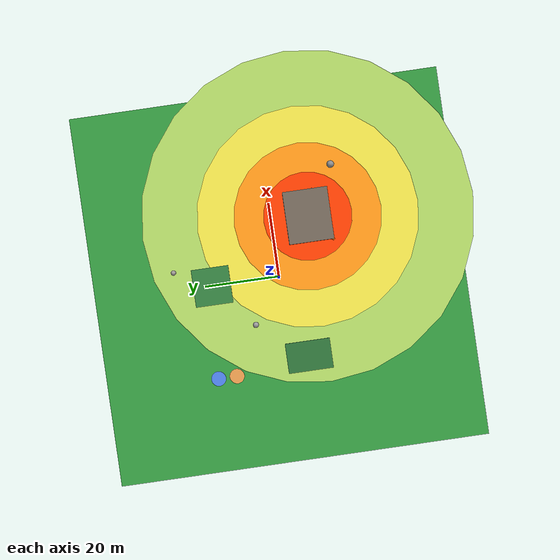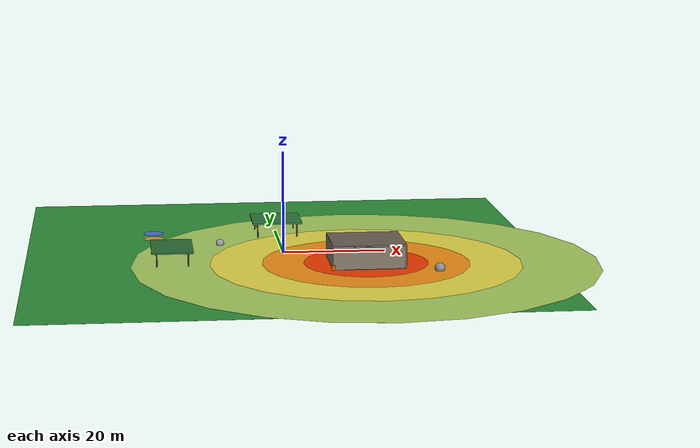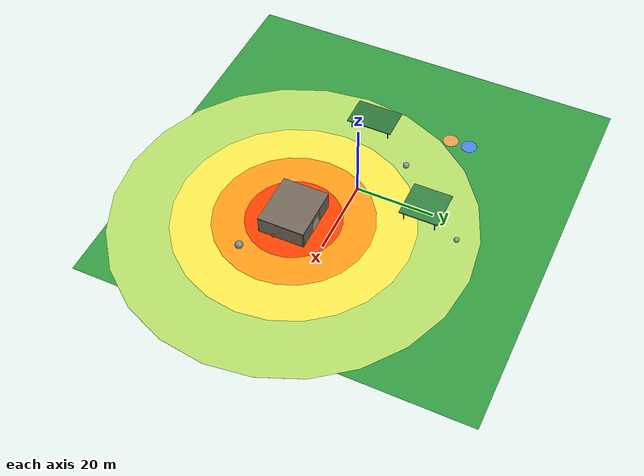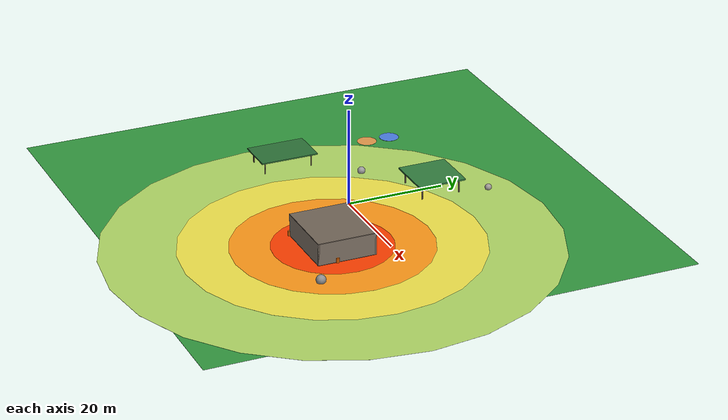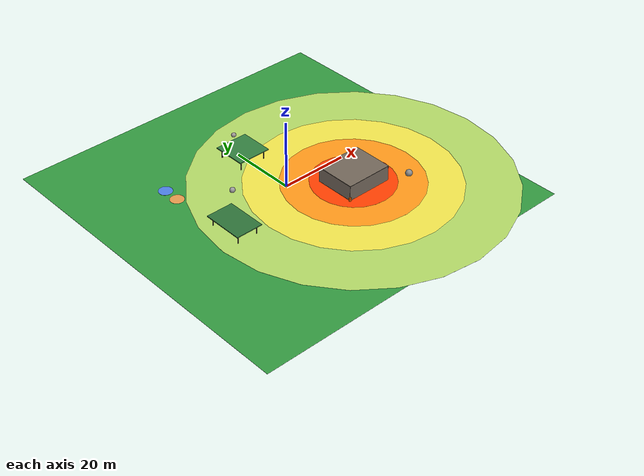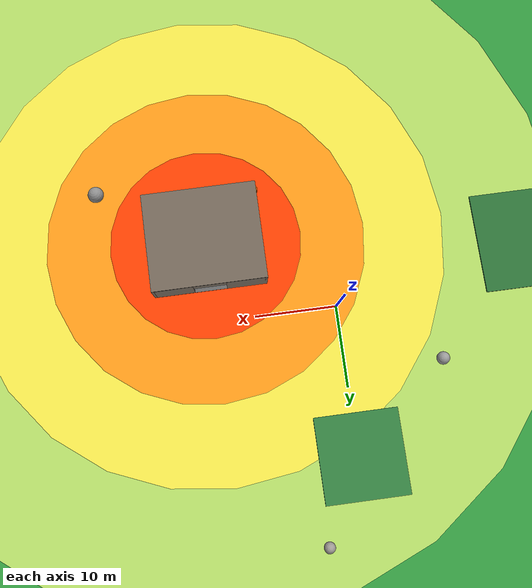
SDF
<?xml version="1.0" ?>
<sdf version="1.9">
  <world name="contamination_world">

    <!-- CONTAMINATION SOURCE LOCALIZATION SCENARIO  -->
    <!-- Source Location: (15, -10) inside warehouse -->
    <!-- Drone spawn: (-25, 20, 2.5)                  -->
    <!-- Rover spawn: (-25, 15, 0.5)                  -->

    <!-- Physics Configuration -->
    <physics name="1ms" type="dart">
      <max_step_size>0.004</max_step_size>
      <real_time_factor>1.0</real_time_factor>
      <real_time_update_rate>250</real_time_update_rate>
    </physics>

    <!-- Required for PX4 sensors -->
    <gravity>0 0 -9.8</gravity>
    <magnetic_field>6e-06 2.3e-05 -4.2e-05</magnetic_field>
    <atmosphere type="adiabatic"/>

    <!-- GPS coordinates (Zurich area - PX4 default) -->
    <spherical_coordinates>
      <surface_model>EARTH_WGS84</surface_model>
      <world_frame_orientation>ENU</world_frame_orientation>
      <latitude_deg>47.397971057728974</latitude_deg>
      <longitude_deg>8.546163739800146</longitude_deg>
      <elevation>0</elevation>
    </spherical_coordinates>

    <!-- Lighting -->
    <light type="directional" name="sun">
      <cast_shadows>true</cast_shadows>
      <pose>0 0 50 0 0 0</pose>
      <diffuse>0.9 0.9 0.85 1</diffuse>
      <specular>0.3 0.3 0.3 1</specular>
      <direction>-0.5 0.2 -0.9</direction>
    </light>

    <light type="directional" name="fill">
      <cast_shadows>false</cast_shadows>
      <pose>0 0 30 0 0 0</pose>
      <diffuse>0.3 0.3 0.4 1</diffuse>
      <direction>0.5 -0.2 -0.7</direction>
    </light>

    <!-- GROUND ZONES - CONTAMINATION GRADIENT       -->

    <!-- Base Ground (Clean - Green) -->
    <model name="ground_clean">
      <static>true</static>
      <pose>0 0 -0.01 0 0 0</pose>
      <link name="link">
        <collision name="collision">
          <geometry>
            <box><size>100 100 0.02</size></box>
          </geometry>
          <surface>
            <friction><ode><mu>100</mu><mu2>100</mu2></ode></friction>
          </surface>
        </collision>
        <visual name="visual">
          <geometry>
            <box><size>100 100 0.02</size></box>
          </geometry>
          <material>
            <ambient>0.2 0.6 0.25 1</ambient>
            <diffuse>0.2 0.6 0.25 1</diffuse>
          </material>
        </visual>
      </link>
    </model>

    <!-- Trace Contamination Zone (Yellow-Green) - 30-45m radius -->
    <model name="zone_trace">
      <static>true</static>
      <pose>15 -10 0.001 0 0 0</pose>
      <link name="link">
        <visual name="visual">
          <geometry>
            <cylinder><radius>45</radius><length>0.01</length></cylinder>
          </geometry>
          <material>
            <ambient>0.7 0.85 0.4 1</ambient>
            <diffuse>0.7 0.85 0.4 1</diffuse>
          </material>
        </visual>
      </link>
    </model>

    <!-- Low Contamination Zone (Yellow) - 20-30m radius -->
    <model name="zone_low">
      <static>true</static>
      <pose>15 -10 0.002 0 0 0</pose>
      <link name="link">
        <visual name="visual">
          <geometry>
            <cylinder><radius>30</radius><length>0.01</length></cylinder>
          </geometry>
          <material>
            <ambient>0.95 0.9 0.3 1</ambient>
            <diffuse>0.95 0.9 0.3 1</diffuse>
          </material>
        </visual>
      </link>
    </model>

    <!-- Medium Contamination Zone (Orange) - 12-20m radius -->
    <model name="zone_medium">
      <static>true</static>
      <pose>15 -10 0.003 0 0 0</pose>
      <link name="link">
        <visual name="visual">
          <geometry>
            <cylinder><radius>20</radius><length>0.01</length></cylinder>
          </geometry>
          <material>
            <ambient>1.0 0.6 0.1 1</ambient>
            <diffuse>1.0 0.6 0.1 1</diffuse>
          </material>
        </visual>
      </link>
    </model>

    <!-- High Contamination Zone (Red-Orange) - 5-12m radius -->
    <model name="zone_high">
      <static>true</static>
      <pose>15 -10 0.004 0 0 0</pose>
      <link name="link">
        <visual name="visual">
          <geometry>
            <cylinder><radius>12</radius><length>0.01</length></cylinder>
          </geometry>
          <material>
            <ambient>1.0 0.25 0.0 1</ambient>
            <diffuse>1.0 0.25 0.0 1</diffuse>
          </material>
        </visual>
      </link>
    </model>

    <!-- Critical Contamination Zone (Dark Red) - 0-5m radius -->
    <model name="zone_critical">
      <static>true</static>
      <pose>15 -10 0.005 0 0 0</pose>
      <link name="link">
        <visual name="visual">
          <geometry>
            <cylinder><radius>5</radius><length>0.01</length></cylinder>
          </geometry>
          <material>
            <ambient>0.8 0.0 0.0 1</ambient>
            <diffuse>0.8 0.0 0.0 1</diffuse>
          </material>
        </visual>
      </link>
    </model>

    <!-- WAREHOUSE - Covers Contamination Source     -->
    <!-- Drone cannot see inside, rover must enter   -->

    <model name="contaminated_warehouse">
      <static>true</static>
      <pose>15 -10 0 0 0 0</pose>

      <!-- Floor -->
      <link name="floor">
        <pose>0 0 0.05 0 0 0</pose>
        <collision name="collision">
          <geometry><box><size>14 12 0.1</size></box></geometry>
        </collision>
        <visual name="visual">
          <geometry><box><size>14 12 0.1</size></box></geometry>
          <material>
            <ambient>0.3 0.3 0.3 1</ambient>
            <diffuse>0.4 0.4 0.4 1</diffuse>
          </material>
        </visual>
      </link>

      <!-- Roof (blocks drone view) -->
      <link name="roof">
        <pose>0 0 4.5 0 0 0</pose>
        <collision name="collision">
          <geometry><box><size>14 12 0.3</size></box></geometry>
        </collision>
        <visual name="visual">
          <geometry><box><size>14 12 0.3</size></box></geometry>
          <material>
            <ambient>0.35 0.3 0.25 1</ambient>
            <diffuse>0.45 0.4 0.35 1</diffuse>
          </material>
        </visual>
      </link>

      <!-- Back Wall -->
      <link name="wall_back">
        <pose>0 -5.85 2.25 0 0 0</pose>
        <collision name="collision">
          <geometry><box><size>14 0.3 4.5</size></box></geometry>
        </collision>
        <visual name="visual">
          <geometry><box><size>14 0.3 4.5</size></box></geometry>
          <material>
            <ambient>0.4 0.35 0.3 1</ambient>
            <diffuse>0.5 0.45 0.4 1</diffuse>
          </material>
        </visual>
      </link>

      <!-- Left Wall -->
      <link name="wall_left">
        <pose>-6.85 0 2.25 0 0 0</pose>
        <collision name="collision">
          <geometry><box><size>0.3 12 4.5</size></box></geometry>
        </collision>
        <visual name="visual">
          <geometry><box><size>0.3 12 4.5</size></box></geometry>
          <material>
            <ambient>0.4 0.35 0.3 1</ambient>
            <diffuse>0.5 0.45 0.4 1</diffuse>
          </material>
        </visual>
      </link>

      <!-- Right Wall -->
      <link name="wall_right">
        <pose>6.85 0 2.25 0 0 0</pose>
        <collision name="collision">
          <geometry><box><size>0.3 12 4.5</size></box></geometry>
        </collision>
        <visual name="visual">
          <geometry><box><size>0.3 12 4.5</size></box></geometry>
          <material>
            <ambient>0.4 0.35 0.3 1</ambient>
            <diffuse>0.5 0.45 0.4 1</diffuse>
          </material>
        </visual>
      </link>

      <!-- Front Wall Left (with door opening) -->
      <link name="wall_front_left">
        <pose>-4.5 5.85 2.25 0 0 0</pose>
        <collision name="collision">
          <geometry><box><size>5 0.3 4.5</size></box></geometry>
        </collision>
        <visual name="visual">
          <geometry><box><size>5 0.3 4.5</size></box></geometry>
          <material>
            <ambient>0.4 0.35 0.3 1</ambient>
            <diffuse>0.5 0.45 0.4 1</diffuse>
          </material>
        </visual>
      </link>

      <!-- Front Wall Right -->
      <link name="wall_front_right">
        <pose>4.5 5.85 2.25 0 0 0</pose>
        <collision name="collision">
          <geometry><box><size>5 0.3 4.5</size></box></geometry>
        </collision>
        <visual name="visual">
          <geometry><box><size>5 0.3 4.5</size></box></geometry>
          <material>
            <ambient>0.4 0.35 0.3 1</ambient>
            <diffuse>0.5 0.45 0.4 1</diffuse>
          </material>
        </visual>
      </link>

      <!-- Door Header -->
      <link name="door_header">
        <pose>0 5.85 3.75 0 0 0</pose>
        <collision name="collision">
          <geometry><box><size>4 0.3 1.5</size></box></geometry>
        </collision>
        <visual name="visual">
          <geometry><box><size>4 0.3 1.5</size></box></geometry>
          <material>
            <ambient>0.4 0.35 0.3 1</ambient>
            <diffuse>0.5 0.45 0.4 1</diffuse>
          </material>
        </visual>
      </link>

      <!-- Contamination Source Marker (inside warehouse) -->
      <link name="source_marker">
        <pose>0 0 0.3 0 0 0</pose>
        <visual name="visual">
          <geometry>
            <cylinder><radius>1.5</radius><length>0.5</length></cylinder>
          </geometry>
          <material>
            <ambient>0.9 0.0 0.0 1</ambient>
            <diffuse>1.0 0.1 0.1 1</diffuse>
            <emissive>0.3 0.0 0.0 1</emissive>
          </material>
        </visual>
      </link>
    </model>

    <!-- CANOPY STRUCTURES - Block aerial view       -->
    <!-- Rover can navigate underneath               -->

    <!-- Canopy North -->
    <model name="canopy_north">
      <static>true</static>
      <pose>0 18 0 0 0 0</pose>

      <link name="roof">
        <pose>0 0 3 0 0 0</pose>
        <collision name="collision">
          <geometry><box><size>10 10 0.3</size></box></geometry>
        </collision>
        <visual name="visual">
          <geometry><box><size>10 10 0.3</size></box></geometry>
          <material>
            <ambient>0.15 0.4 0.2 1</ambient>
            <diffuse>0.2 0.5 0.25 1</diffuse>
          </material>
        </visual>
      </link>

      <!-- Pillars -->
      <link name="pillar_1">
        <pose>-4 -4 1.5 0 0 0</pose>
        <collision name="collision">
          <geometry><cylinder><radius>0.15</radius><length>3</length></cylinder></geometry>
        </collision>
        <visual name="visual">
          <geometry><cylinder><radius>0.15</radius><length>3</length></cylinder></geometry>
          <material><ambient>0.3 0.25 0.2 1</ambient></material>
        </visual>
      </link>
      <link name="pillar_2">
        <pose>4 -4 1.5 0 0 0</pose>
        <collision name="collision">
          <geometry><cylinder><radius>0.15</radius><length>3</length></cylinder></geometry>
        </collision>
        <visual name="visual">
          <geometry><cylinder><radius>0.15</radius><length>3</length></cylinder></geometry>
          <material><ambient>0.3 0.25 0.2 1</ambient></material>
        </visual>
      </link>
      <link name="pillar_3">
        <pose>-4 4 1.5 0 0 0</pose>
        <collision name="collision">
          <geometry><cylinder><radius>0.15</radius><length>3</length></cylinder></geometry>
        </collision>
        <visual name="visual">
          <geometry><cylinder><radius>0.15</radius><length>3</length></cylinder></geometry>
          <material><ambient>0.3 0.25 0.2 1</ambient></material>
        </visual>
      </link>
      <link name="pillar_4">
        <pose>4 4 1.5 0 0 0</pose>
        <collision name="collision">
          <geometry><cylinder><radius>0.15</radius><length>3</length></cylinder></geometry>
        </collision>
        <visual name="visual">
          <geometry><cylinder><radius>0.15</radius><length>3</length></cylinder></geometry>
          <material><ambient>0.3 0.25 0.2 1</ambient></material>
        </visual>
      </link>
    </model>

    <!-- Canopy West -->
    <model name="canopy_west">
      <static>true</static>
      <pose>-22 -5 0 0 0 0</pose>

      <link name="roof">
        <pose>0 0 2.8 0 0 0</pose>
        <collision name="collision">
          <geometry><box><size>8 12 0.25</size></box></geometry>
        </collision>
        <visual name="visual">
          <geometry><box><size>8 12 0.25</size></box></geometry>
          <material>
            <ambient>0.12 0.35 0.18 1</ambient>
            <diffuse>0.18 0.45 0.22 1</diffuse>
          </material>
        </visual>
      </link>

      <link name="pillar_1">
        <pose>-3 -5 1.4 0 0 0</pose>
        <collision name="collision">
          <geometry><cylinder><radius>0.12</radius><length>2.8</length></cylinder></geometry>
        </collision>
        <visual name="visual">
          <geometry><cylinder><radius>0.12</radius><length>2.8</length></cylinder></geometry>
          <material><ambient>0.3 0.25 0.2 1</ambient></material>
        </visual>
      </link>
      <link name="pillar_2">
        <pose>3 -5 1.4 0 0 0</pose>
        <collision name="collision">
          <geometry><cylinder><radius>0.12</radius><length>2.8</length></cylinder></geometry>
        </collision>
        <visual name="visual">
          <geometry><cylinder><radius>0.12</radius><length>2.8</length></cylinder></geometry>
          <material><ambient>0.3 0.25 0.2 1</ambient></material>
        </visual>
      </link>
      <link name="pillar_3">
        <pose>-3 5 1.4 0 0 0</pose>
        <collision name="collision">
          <geometry><cylinder><radius>0.12</radius><length>2.8</length></cylinder></geometry>
        </collision>
        <visual name="visual">
          <geometry><cylinder><radius>0.12</radius><length>2.8</length></cylinder></geometry>
          <material><ambient>0.3 0.25 0.2 1</ambient></material>
        </visual>
      </link>
      <link name="pillar_4">
        <pose>3 5 1.4 0 0 0</pose>
        <collision name="collision">
          <geometry><cylinder><radius>0.12</radius><length>2.8</length></cylinder></geometry>
        </collision>
        <visual name="visual">
          <geometry><cylinder><radius>0.12</radius><length>2.8</length></cylinder></geometry>
          <material><ambient>0.3 0.25 0.2 1</ambient></material>
        </visual>
      </link>
    </model>

    <!-- HAZARD BARRELS - Near contamination source  -->

    <model name="barrel_cluster">
      <static>true</static>
      <pose>0 0 0 0 0 0</pose>

      <link name="barrel_1">
        <pose>10 -6 0.5 0 0 0</pose>
        <collision name="collision">
          <geometry><cylinder><radius>0.35</radius><length>1.0</length></cylinder></geometry>
        </collision>
        <visual name="visual">
          <geometry><cylinder><radius>0.35</radius><length>1.0</length></cylinder></geometry>
          <material>
            <ambient>0.7 0.3 0.0 1</ambient>
            <diffuse>0.8 0.35 0.0 1</diffuse>
          </material>
        </visual>
      </link>

      <link name="barrel_2">
        <pose>12 -14 0.5 0 0 0</pose>
        <collision name="collision">
          <geometry><cylinder><radius>0.35</radius><length>1.0</length></cylinder></geometry>
        </collision>
        <visual name="visual">
          <geometry><cylinder><radius>0.35</radius><length>1.0</length></cylinder></geometry>
          <material>
            <ambient>0.7 0.3 0.0 1</ambient>
            <diffuse>0.8 0.35 0.0 1</diffuse>
          </material>
        </visual>
      </link>

      <link name="barrel_3">
        <pose>20 -8 0.5 0 0 0</pose>
        <collision name="collision">
          <geometry><cylinder><radius>0.35</radius><length>1.0</length></cylinder></geometry>
        </collision>
        <visual name="visual">
          <geometry><cylinder><radius>0.35</radius><length>1.0</length></cylinder></geometry>
          <material>
            <ambient>0.7 0.3 0.0 1</ambient>
            <diffuse>0.8 0.35 0.0 1</diffuse>
          </material>
        </visual>
      </link>

      <link name="barrel_4">
        <pose>8 -16 0.5 0 0 0</pose>
        <collision name="collision">
          <geometry><cylinder><radius>0.35</radius><length>1.0</length></cylinder></geometry>
        </collision>
        <visual name="visual">
          <geometry><cylinder><radius>0.35</radius><length>1.0</length></cylinder></geometry>
          <material>
            <ambient>0.7 0.3 0.0 1</ambient>
            <diffuse>0.8 0.35 0.0 1</diffuse>
          </material>
        </visual>
      </link>

      <link name="barrel_5">
        <pose>22 -12 0.5 0 0 0</pose>
        <collision name="collision">
          <geometry><cylinder><radius>0.35</radius><length>1.0</length></cylinder></geometry>
        </collision>
        <visual name="visual">
          <geometry><cylinder><radius>0.35</radius><length>1.0</length></cylinder></geometry>
          <material>
            <ambient>0.7 0.3 0.0 1</ambient>
            <diffuse>0.8 0.35 0.0 1</diffuse>
          </material>
        </visual>
      </link>
    </model>

    <!-- ROCKS - Navigation obstacles                -->

    <model name="rock_1">
      <static>true</static>
      <pose>-12 8 0.4 0.1 0.2 0.5</pose>
      <link name="link">
        <collision name="collision">
          <geometry><sphere><radius>0.8</radius></sphere></geometry>
        </collision>
        <visual name="visual">
          <geometry><sphere><radius>0.8</radius></sphere></geometry>
          <material>
            <ambient>0.5 0.5 0.5 1</ambient>
            <diffuse>0.6 0.6 0.6 1</diffuse>
          </material>
        </visual>
      </link>
    </model>

    <model name="rock_2">
      <static>true</static>
      <pose>28 -18 0.5 0.2 -0.1 1.2</pose>
      <link name="link">
        <collision name="collision">
          <geometry><sphere><radius>1.0</radius></sphere></geometry>
        </collision>
        <visual name="visual">
          <geometry><sphere><radius>1.0</radius></sphere></geometry>
          <material>
            <ambient>0.45 0.45 0.45 1</ambient>
            <diffuse>0.55 0.55 0.55 1</diffuse>
          </material>
        </visual>
      </link>
    </model>

    <model name="rock_3">
      <static>true</static>
      <pose>5 28 0.35 -0.15 0.1 2.1</pose>
      <link name="link">
        <collision name="collision">
          <geometry><sphere><radius>0.7</radius></sphere></geometry>
        </collision>
        <visual name="visual">
          <geometry><sphere><radius>0.7</radius></sphere></geometry>
          <material>
            <ambient>0.52 0.5 0.48 1</ambient>
            <diffuse>0.62 0.6 0.58 1</diffuse>
          </material>
        </visual>
      </link>
    </model>

    <!-- SPAWN PADS - Visual markers                 -->

    <!-- Drone Spawn Pad -->
    <model name="drone_spawn_pad">
      <static>true</static>
      <pose>-25 20 0.02 0 0 0</pose>
      <link name="link">
        <visual name="visual">
          <geometry>
            <cylinder><radius>2.0</radius><length>0.04</length></cylinder>
          </geometry>
          <material>
            <ambient>0.2 0.4 0.8 1</ambient>
            <diffuse>0.3 0.5 0.9 1</diffuse>
          </material>
        </visual>
      </link>
    </model>

    <!-- Rover Spawn Pad -->
    <model name="rover_spawn_pad">
      <static>true</static>
      <pose>-25 15 0.02 0 0 0</pose>
      <link name="link">
        <visual name="visual">
          <geometry>
            <cylinder><radius>2.0</radius><length>0.04</length></cylinder>
          </geometry>
          <material>
            <ambient>0.8 0.5 0.2 1</ambient>
            <diffuse>0.9 0.6 0.3 1</diffuse>
          </material>
        </visual>
      </link>
    </model>

    <!-- SCENARIO INFORMATION                        -->

  </world>
</sdf>
